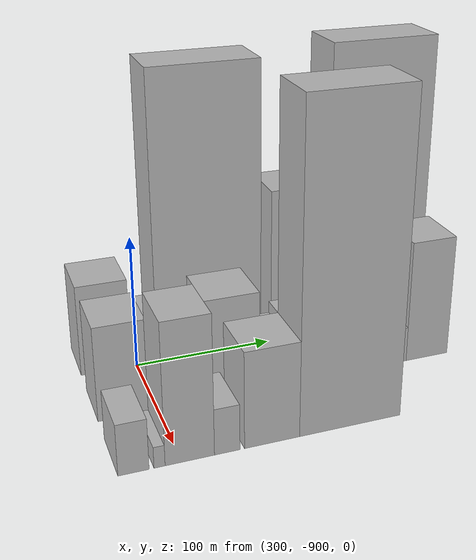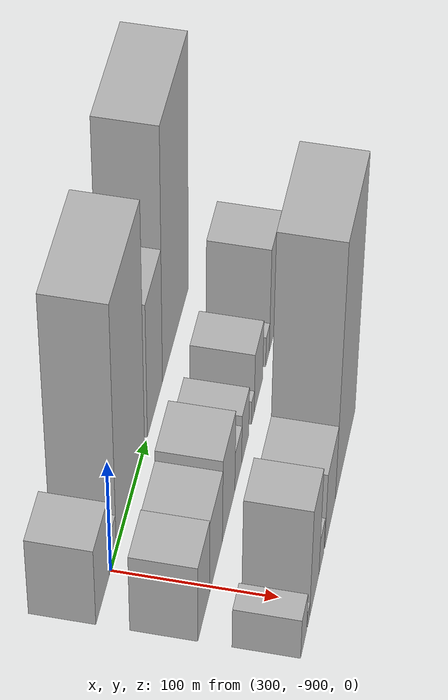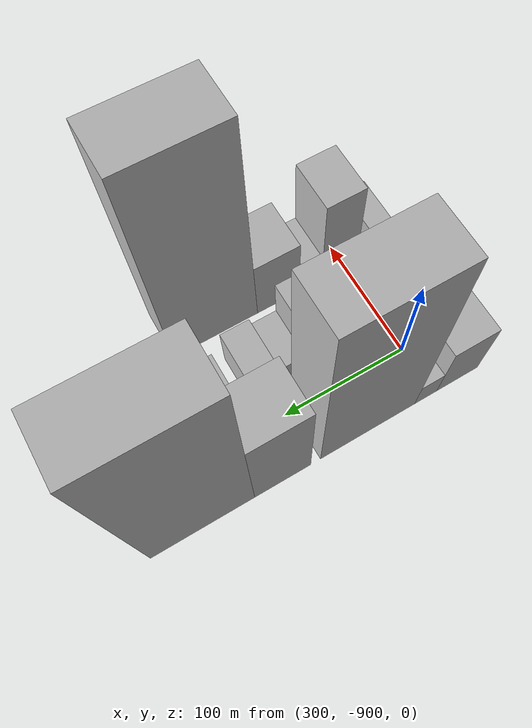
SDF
<sdf version="1.6">
 <world name="default">
  <model name="building_163">
   <static>1</static>
   <pose>280.0000 -921.9414 0 0.000000 0.000000 0.000000</pose>
   <link name="link">
    <pose>0 0 34.50 0 0 0</pose>
    <collision name="collision"><geometry><box><size>40.0000 36.1172 69.0000</size></box></geometry></collision>
    <visual name="visual">
     <cast_shadows>0</cast_shadows>
     <geometry><box><size>40.0000 36.1172 69.0000</size></box></geometry>
     <material>
      <script>
       <uri>model://HANNAS_wall/materials/scripts</uri>
       <uri>model://HANNAS_wall/materials/textures</uri>
       <name>vrc/HANNAS_wall</name>
      </script>
     </material>
    </visual>
   </link>
  </model>
  <model name="building_164">
   <static>1</static>
   <pose>280.0000 -894.3370 0 0.000000 0.000000 0.000000</pose>
   <link name="link">
    <pose>0 0 16.50 0 0 0</pose>
    <collision name="collision"><geometry><box><size>40.0000 19.0916 33.0000</size></box></geometry></collision>
    <visual name="visual">
     <cast_shadows>0</cast_shadows>
     <geometry><box><size>40.0000 19.0916 33.0000</size></box></geometry>
     <material>
      <script>
       <uri>model://HANNAS_wall/materials/scripts</uri>
       <uri>model://HANNAS_wall/materials/textures</uri>
       <name>vrc/HANNAS_wall</name>
      </script>
     </material>
    </visual>
   </link>
  </model>
  <model name="building_165">
   <static>1</static>
   <pose>280.0000 -845.0297 0 0.000000 0.000000 0.000000</pose>
   <link name="link">
    <pose>0 0 108.00 0 0 0</pose>
    <collision name="collision"><geometry><box><size>40.0000 79.5230 216.0000</size></box></geometry></collision>
    <visual name="visual">
     <cast_shadows>0</cast_shadows>
     <geometry><box><size>40.0000 79.5230 216.0000</size></box></geometry>
     <material>
      <script>
       <uri>model://HANNAS_wall/materials/scripts</uri>
       <uri>model://HANNAS_wall/materials/textures</uri>
       <name>vrc/HANNAS_wall</name>
      </script>
     </material>
    </visual>
   </link>
  </model>
  <model name="building_166">
   <static>1</static>
   <pose>280.0000 -774.8929 0 0.000000 0.000000 0.000000</pose>
   <link name="link">
    <pose>0 0 60.00 0 0 0</pose>
    <collision name="collision"><geometry><box><size>40.0000 44.7508 120.0000</size></box></geometry></collision>
    <visual name="visual">
     <cast_shadows>0</cast_shadows>
     <geometry><box><size>40.0000 44.7508 120.0000</size></box></geometry>
     <material>
      <script>
       <uri>model://HANNAS_wall/materials/scripts</uri>
       <uri>model://HANNAS_wall/materials/textures</uri>
       <name>vrc/HANNAS_wall</name>
      </script>
     </material>
    </visual>
   </link>
  </model>
  <model name="building_167">
   <static>1</static>
   <pose>280.0000 -712.6948 0 0.000000 0.000000 0.000000</pose>
   <link name="link">
    <pose>0 0 111.00 0 0 0</pose>
    <collision name="collision"><geometry><box><size>40.0000 79.6453 222.0000</size></box></geometry></collision>
    <visual name="visual">
     <cast_shadows>0</cast_shadows>
     <geometry><box><size>40.0000 79.6453 222.0000</size></box></geometry>
     <material>
      <script>
       <uri>model://HANNAS_wall/materials/scripts</uri>
       <uri>model://HANNAS_wall/materials/textures</uri>
       <name>vrc/HANNAS_wall</name>
      </script>
     </material>
    </visual>
   </link>
  </model>
  <model name="building_215">
   <static>1</static>
   <pose>340.0000 -922.7356 0 0.000000 0.000000 0.000000</pose>
   <link name="link">
    <pose>0 0 34.50 0 0 0</pose>
    <collision name="collision"><geometry><box><size>40.0000 34.5287 69.0000</size></box></geometry></collision>
    <visual name="visual">
     <cast_shadows>0</cast_shadows>
     <geometry><box><size>40.0000 34.5287 69.0000</size></box></geometry>
     <material>
      <script>
       <uri>model://HANNAS_wall/materials/scripts</uri>
       <uri>model://HANNAS_wall/materials/textures</uri>
       <name>vrc/HANNAS_wall</name>
      </script>
     </material>
    </visual>
   </link>
  </model>
  <model name="building_216">
   <static>1</static>
   <pose>340.0000 -886.0057 0 0.000000 0.000000 0.000000</pose>
   <link name="link">
    <pose>0 0 33.00 0 0 0</pose>
    <collision name="collision"><geometry><box><size>40.0000 38.9311 66.0000</size></box></geometry></collision>
    <visual name="visual">
     <cast_shadows>0</cast_shadows>
     <geometry><box><size>40.0000 38.9311 66.0000</size></box></geometry>
     <material>
      <script>
       <uri>model://HANNAS_wall/materials/scripts</uri>
       <uri>model://HANNAS_wall/materials/textures</uri>
       <name>vrc/HANNAS_wall</name>
      </script>
     </material>
    </visual>
   </link>
  </model>
  <model name="building_217">
   <static>1</static>
   <pose>340.0000 -847.2848 0 0.000000 0.000000 0.000000</pose>
   <link name="link">
    <pose>0 0 37.50 0 0 0</pose>
    <collision name="collision"><geometry><box><size>40.0000 38.5107 75.0000</size></box></geometry></collision>
    <visual name="visual">
     <cast_shadows>0</cast_shadows>
     <geometry><box><size>40.0000 38.5107 75.0000</size></box></geometry>
     <material>
      <script>
       <uri>model://HANNAS_wall/materials/scripts</uri>
       <uri>model://HANNAS_wall/materials/textures</uri>
       <name>vrc/HANNAS_wall</name>
      </script>
     </material>
    </visual>
   </link>
  </model>
  <model name="building_218">
   <static>1</static>
   <pose>340.0000 -817.3415 0 0.000000 0.000000 0.000000</pose>
   <link name="link">
    <pose>0 0 18.00 0 0 0</pose>
    <collision name="collision"><geometry><box><size>40.0000 21.3759 36.0000</size></box></geometry></collision>
    <visual name="visual">
     <cast_shadows>0</cast_shadows>
     <geometry><box><size>40.0000 21.3759 36.0000</size></box></geometry>
     <material>
      <script>
       <uri>model://HANNAS_wall/materials/scripts</uri>
       <uri>model://HANNAS_wall/materials/textures</uri>
       <name>vrc/HANNAS_wall</name>
      </script>
     </material>
    </visual>
   </link>
  </model>
  <model name="building_219">
   <static>1</static>
   <pose>340.0000 -795.1544 0 0.000000 0.000000 0.000000</pose>
   <link name="link">
    <pose>0 0 22.50 0 0 0</pose>
    <collision name="collision"><geometry><box><size>40.0000 22.9982 45.0000</size></box></geometry></collision>
    <visual name="visual">
     <cast_shadows>0</cast_shadows>
     <geometry><box><size>40.0000 22.9982 45.0000</size></box></geometry>
     <material>
      <script>
       <uri>model://HANNAS_wall/materials/scripts</uri>
       <uri>model://HANNAS_wall/materials/textures</uri>
       <name>vrc/HANNAS_wall</name>
      </script>
     </material>
    </visual>
   </link>
  </model>
  <model name="building_220">
   <static>1</static>
   <pose>340.0000 -770.2133 0 0.000000 0.000000 0.000000</pose>
   <link name="link">
    <pose>0 0 10.50 0 0 0</pose>
    <collision name="collision"><geometry><box><size>40.0000 8.8840 21.0000</size></box></geometry></collision>
    <visual name="visual">
     <cast_shadows>0</cast_shadows>
     <geometry><box><size>40.0000 8.8840 21.0000</size></box></geometry>
     <material>
      <script>
       <uri>model://HANNAS_wall/materials/scripts</uri>
       <uri>model://HANNAS_wall/materials/textures</uri>
       <name>vrc/HANNAS_wall</name>
      </script>
     </material>
    </visual>
   </link>
  </model>
  <model name="building_221">
   <static>1</static>
   <pose>340.0000 -751.6352 0 0.000000 0.000000 0.000000</pose>
   <link name="link">
    <pose>0 0 27.00 0 0 0</pose>
    <collision name="collision"><geometry><box><size>40.0000 28.2722 54.0000</size></box></geometry></collision>
    <visual name="visual">
     <cast_shadows>0</cast_shadows>
     <geometry><box><size>40.0000 28.2722 54.0000</size></box></geometry>
     <material>
      <script>
       <uri>model://HANNAS_wall/materials/scripts</uri>
       <uri>model://HANNAS_wall/materials/textures</uri>
       <name>vrc/HANNAS_wall</name>
      </script>
     </material>
    </visual>
   </link>
  </model>
  <model name="building_222">
   <static>1</static>
   <pose>340.0000 -721.3886 0 0.000000 0.000000 0.000000</pose>
   <link name="link">
    <pose>0 0 13.50 0 0 0</pose>
    <collision name="collision"><geometry><box><size>40.0000 12.2209 27.0000</size></box></geometry></collision>
    <visual name="visual">
     <cast_shadows>0</cast_shadows>
     <geometry><box><size>40.0000 12.2209 27.0000</size></box></geometry>
     <material>
      <script>
       <uri>model://HANNAS_wall/materials/scripts</uri>
       <uri>model://HANNAS_wall/materials/textures</uri>
       <name>vrc/HANNAS_wall</name>
      </script>
     </material>
    </visual>
   </link>
  </model>
  <model name="building_223">
   <static>1</static>
   <pose>340.0000 -698.5658 0 0.000000 0.000000 0.000000</pose>
   <link name="link">
    <pose>0 0 46.50 0 0 0</pose>
    <collision name="collision"><geometry><box><size>40.0000 33.4246 93.0000</size></box></geometry></collision>
    <visual name="visual">
     <cast_shadows>0</cast_shadows>
     <geometry><box><size>40.0000 33.4246 93.0000</size></box></geometry>
     <material>
      <script>
       <uri>model://HANNAS_wall/materials/scripts</uri>
       <uri>model://HANNAS_wall/materials/textures</uri>
       <name>vrc/HANNAS_wall</name>
      </script>
     </material>
    </visual>
   </link>
  </model>
  <model name="building_280">
   <static>1</static>
   <pose>400.0000 -930.3884 0 0.000000 0.000000 0.000000</pose>
   <link name="link">
    <pose>0 0 18.00 0 0 0</pose>
    <collision name="collision"><geometry><box><size>40.0000 19.2233 36.0000</size></box></geometry></collision>
    <visual name="visual">
     <cast_shadows>0</cast_shadows>
     <geometry><box><size>40.0000 19.2233 36.0000</size></box></geometry>
     <material>
      <script>
       <uri>model://HANNAS_wall/materials/scripts</uri>
       <uri>model://HANNAS_wall/materials/textures</uri>
       <name>vrc/HANNAS_wall</name>
      </script>
     </material>
    </visual>
   </link>
  </model>
  <model name="building_281">
   <static>1</static>
   <pose>400.0000 -914.3119 0 0.000000 0.000000 0.000000</pose>
   <link name="link">
    <pose>0 0 7.50 0 0 0</pose>
    <collision name="collision"><geometry><box><size>40.0000 6.9297 15.0000</size></box></geometry></collision>
    <visual name="visual">
     <cast_shadows>0</cast_shadows>
     <geometry><box><size>40.0000 6.9297 15.0000</size></box></geometry>
     <material>
      <script>
       <uri>model://HANNAS_wall/materials/scripts</uri>
       <uri>model://HANNAS_wall/materials/textures</uri>
       <name>vrc/HANNAS_wall</name>
      </script>
     </material>
    </visual>
   </link>
  </model>
  <model name="building_282">
   <static>1</static>
   <pose>400.0000 -895.1298 0 0.000000 0.000000 0.000000</pose>
   <link name="link">
    <pose>0 0 49.50 0 0 0</pose>
    <collision name="collision"><geometry><box><size>40.0000 31.4344 99.0000</size></box></geometry></collision>
    <visual name="visual">
     <cast_shadows>0</cast_shadows>
     <geometry><box><size>40.0000 31.4344 99.0000</size></box></geometry>
     <material>
      <script>
       <uri>model://HANNAS_wall/materials/scripts</uri>
       <uri>model://HANNAS_wall/materials/textures</uri>
       <name>vrc/HANNAS_wall</name>
      </script>
     </material>
    </visual>
   </link>
  </model>
  <model name="building_283">
   <static>1</static>
   <pose>400.0000 -871.0902 0 0.000000 0.000000 0.000000</pose>
   <link name="link">
    <pose>0 0 16.50 0 0 0</pose>
    <collision name="collision"><geometry><box><size>40.0000 16.6448 33.0000</size></box></geometry></collision>
    <visual name="visual">
     <cast_shadows>0</cast_shadows>
     <geometry><box><size>40.0000 16.6448 33.0000</size></box></geometry>
     <material>
      <script>
       <uri>model://HANNAS_wall/materials/scripts</uri>
       <uri>model://HANNAS_wall/materials/textures</uri>
       <name>vrc/HANNAS_wall</name>
      </script>
     </material>
    </visual>
   </link>
  </model>
  <model name="building_284">
   <static>1</static>
   <pose>400.0000 -841.2622 0 0.000000 0.000000 0.000000</pose>
   <link name="link">
    <pose>0 0 34.50 0 0 0</pose>
    <collision name="collision"><geometry><box><size>40.0000 37.0113 69.0000</size></box></geometry></collision>
    <visual name="visual">
     <cast_shadows>0</cast_shadows>
     <geometry><box><size>40.0000 37.0113 69.0000</size></box></geometry>
     <material>
      <script>
       <uri>model://HANNAS_wall/materials/scripts</uri>
       <uri>model://HANNAS_wall/materials/textures</uri>
       <name>vrc/HANNAS_wall</name>
      </script>
     </material>
    </visual>
   </link>
  </model>
  <model name="building_285">
   <static>1</static>
   <pose>400.0000 -787.1593 0 0.000000 0.000000 0.000000</pose>
   <link name="link">
    <pose>0 0 112.50 0 0 0</pose>
    <collision name="collision"><geometry><box><size>40.0000 71.1944 225.0000</size></box></geometry></collision>
    <visual name="visual">
     <cast_shadows>0</cast_shadows>
     <geometry><box><size>40.0000 71.1944 225.0000</size></box></geometry>
     <material>
      <script>
       <uri>model://HANNAS_wall/materials/scripts</uri>
       <uri>model://HANNAS_wall/materials/textures</uri>
       <name>vrc/HANNAS_wall</name>
      </script>
     </material>
    </visual>
   </link>
  </model>
 </world>
</sdf>
